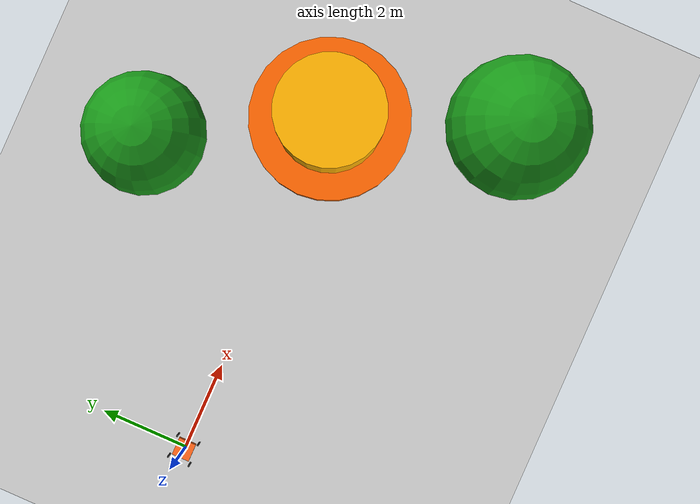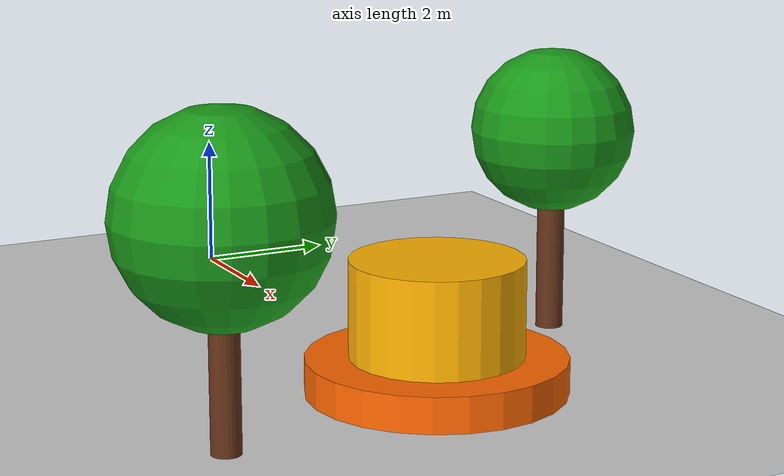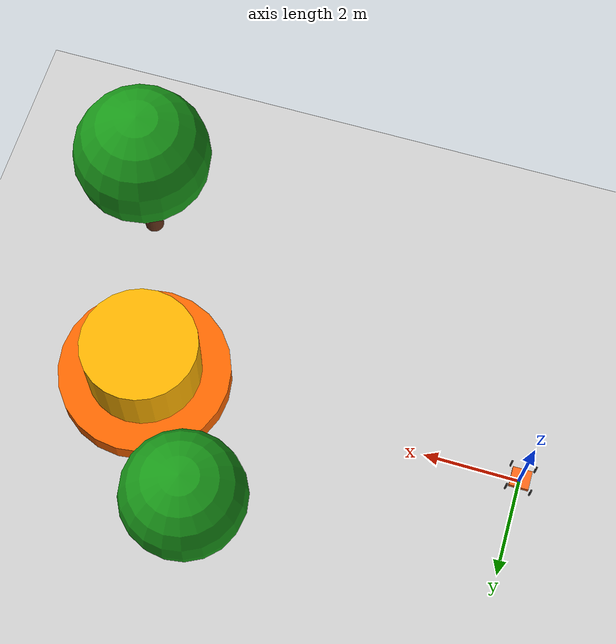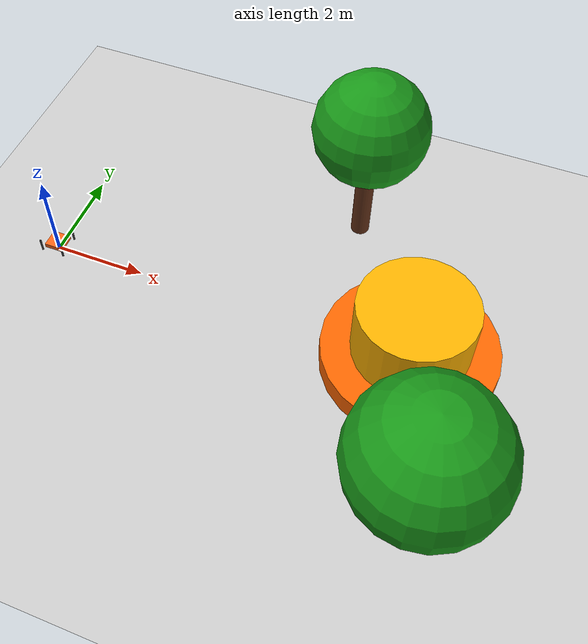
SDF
<?xml version="1.0" ?>
<sdf version="1.6">
  <world name="mchs_world">
    <!-- Освещение сцены (Солнце) -->
    <include>
      <uri>model://sun</uri>
    </include>

    <!-- Поверхность земли -->
    <include>
      <uri>model://ground_plane</uri>
    </include>

    <!-- Окружение: Очаг лесного пожара (Зона ЧС) -->
    <model name="fire_emergency_spot">
      <static>true</static>
      <pose>8.0 0.0 0.25 0 0 0</pose>
      <link name="link">
        <collision name="collision">
          <geometry>
            <cylinder>
              <radius>1.8</radius>
              <length>0.5</length>
            </cylinder>
          </geometry>
        </collision>
        <visual name="visual_core">
          <geometry>
            <cylinder>
              <radius>1.8</radius>
              <length>0.5</length>
            </cylinder>
          </geometry>
          <material>
            <ambient>1.0 0.2 0.0 1.0</ambient>
            <diffuse>1.0 0.4 0.0 1.0</diffuse>
            <emissive>1.0 0.3 0.0 1.0</emissive>
          </material>
        </visual>
        <!-- Пламя / Ядро возгорания -->
        <visual name="visual_flame">
          <pose>0 0 0.8 0 0 0</pose>
          <geometry>
            <cylinder>
              <radius>1.2</radius>
              <length>1.6</length>
            </cylinder>
          </geometry>
          <material>
            <ambient>1.0 0.6 0.0 1.0</ambient>
            <diffuse>1.0 0.7 0.0 1.0</diffuse>
            <emissive>1.0 0.8 0.0 1.0</emissive>
          </material>
        </visual>
      </link>
    </model>

    <!-- Деревья / Ориентиры зоны поиска -->
    <model name="forest_tree_1">
      <static>true</static>
      <pose>6.0 3.0 1.5 0 0 0</pose>
      <link name="link">
        <visual name="trunk">
          <geometry><cylinder><radius>0.2</radius><length>3.0</length></cylinder></geometry>
          <material><ambient>0.4 0.2 0.1 1</ambient><diffuse>0.4 0.2 0.1 1</diffuse></material>
        </visual>
        <visual name="leaves">
          <pose>0 0 1.5 0 0 0</pose>
          <geometry><sphere><radius>1.2</radius></sphere></geometry>
          <material><ambient>0.1 0.5 0.1 1</ambient><diffuse>0.1 0.6 0.1 1</diffuse></material>
        </visual>
      </link>
    </model>

    <model name="forest_tree_2">
      <static>true</static>
      <pose>9.0 -3.5 1.5 0 0 0</pose>
      <link name="link">
        <visual name="trunk">
          <geometry><cylinder><radius>0.2</radius><length>3.0</length></cylinder></geometry>
          <material><ambient>0.4 0.2 0.1 1</ambient><diffuse>0.4 0.2 0.1 1</diffuse></material>
        </visual>
        <visual name="leaves">
          <pose>0 0 1.5 0 0 0</pose>
          <geometry><sphere><radius>1.4</radius></sphere></geometry>
          <material><ambient>0.1 0.5 0.1 1</ambient><diffuse>0.1 0.6 0.1 1</diffuse></material>
        </visual>
      </link>
    </model>

    <!-- БПЛА МЧС (Квадрокоптер с бортовой камерой и ROS 2 плагинами) -->
    <model name="mchs_quadcopter">
      <pose>0 0 0.2 0 0 0</pose>
      <link name="base_link">
        <inertial>
          <mass>1.5</mass>
          <inertia>
            <ixx>0.034</ixx><ixy>0</ixy><ixz>0</ixz>
            <iyy>0.034</iyy><iyz>0</iyz><izz>0.06</izz>
          </inertia>
        </inertial>

        <!-- Корпус квадрокоптера -->
        <visual name="body_visual">
          <geometry><box><size>0.4 0.4 0.1</size></box></geometry>
          <material>
            <ambient>0.9 0.3 0.1 1</ambient>
            <diffuse>1.0 0.4 0.1 1</diffuse>
          </material>
        </visual>
        <collision name="body_collision">
          <geometry><box><size>0.4 0.4 0.1</size></box></geometry>
        </collision>

        <!-- Лучи и пропеллеры -->
        <visual name="arm_1">
          <pose>0.25 0.25 0.05 0 0 0.785</pose>
          <geometry><cylinder><radius>0.02</radius><length>0.3</length></cylinder></geometry>
          <material><ambient>0.2 0.2 0.2 1</ambient></material>
        </visual>
        <visual name="arm_2">
          <pose>-0.25 -0.25 0.05 0 0 0.785</pose>
          <geometry><cylinder><radius>0.02</radius><length>0.3</length></cylinder></geometry>
          <material><ambient>0.2 0.2 0.2 1</ambient></material>
        </visual>
        <visual name="arm_3">
          <pose>-0.25 0.25 0.05 0 0 -0.785</pose>
          <geometry><cylinder><radius>0.02</radius><length>0.3</length></cylinder></geometry>
          <material><ambient>0.2 0.2 0.2 1</ambient></material>
        </visual>
        <visual name="arm_4">
          <pose>0.25 -0.25 0.05 0 0 -0.785</pose>
          <geometry><cylinder><radius>0.02</radius><length>0.3</length></cylinder></geometry>
          <material><ambient>0.2 0.2 0.2 1</ambient></material>
        </visual>

        <!-- Сенсор: Оптико-электронная камера БПЛА с наклоном вниз (35 град) -->
        <sensor type="camera" name="mchs_camera">
          <pose>0.15 0.0 -0.05 0 0.6 0</pose>
          <update_rate>30.0</update_rate>
          <camera name="head">
            <horizontal_fov>1.3962634</horizontal_fov>
            <image>
              <width>640</width>
              <height>480</height>
              <format>R8G8B8</format>
            </image>
            <clip>
              <near>0.1</near>
              <far>300</far>
            </clip>
          </camera>
          <!-- ROS 2 плагин трансляции видео в топик -->
          <plugin name="camera_controller" filename="libgazebo_ros_camera.so">
            <ros>
              <namespace>/mchs</namespace>
              <remapping>image_raw:=camera/image_raw</remapping>
              <remapping>camera_info:=camera/camera_info</remapping>
            </ros>
            <camera_name>camera</camera_name>
            <frame_name>camera_optical_link</frame_name>
          </plugin>
        </sensor>
      </link>

      <!-- ROS 2 плагин автономного перемещения дрона в 3D пространстве -->
      <plugin name="drone_controller" filename="libgazebo_ros_planar_move.so">
        <ros>
          <namespace>/mchs</namespace>
          <remapping>cmd_vel:=cmd_vel</remapping>
          <remapping>odom:=odom</remapping>
        </ros>
        <update_rate>50</update_rate>
        <publish_rate>20</publish_rate>
      </plugin>
    </model>

  </world>
</sdf>
